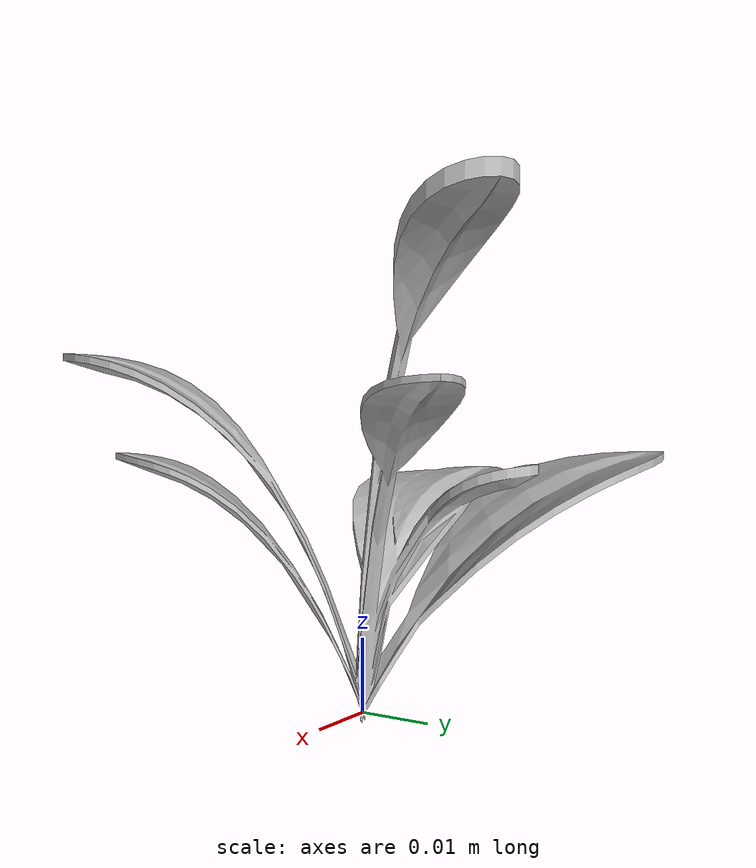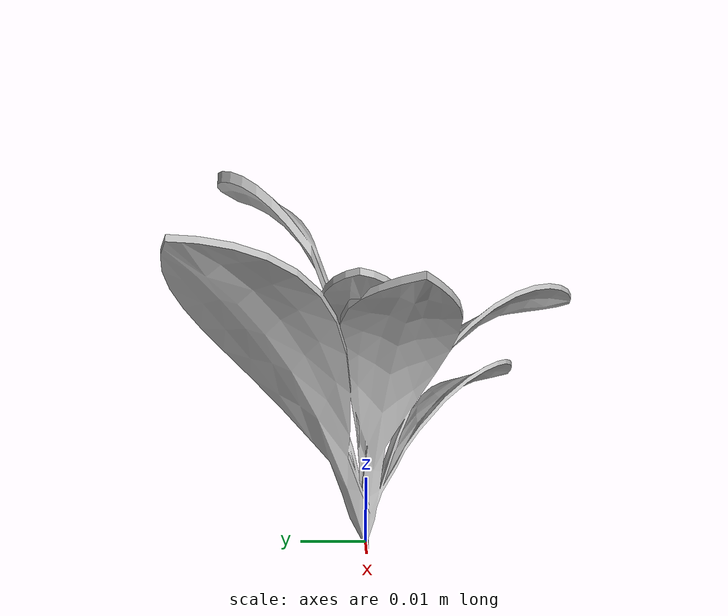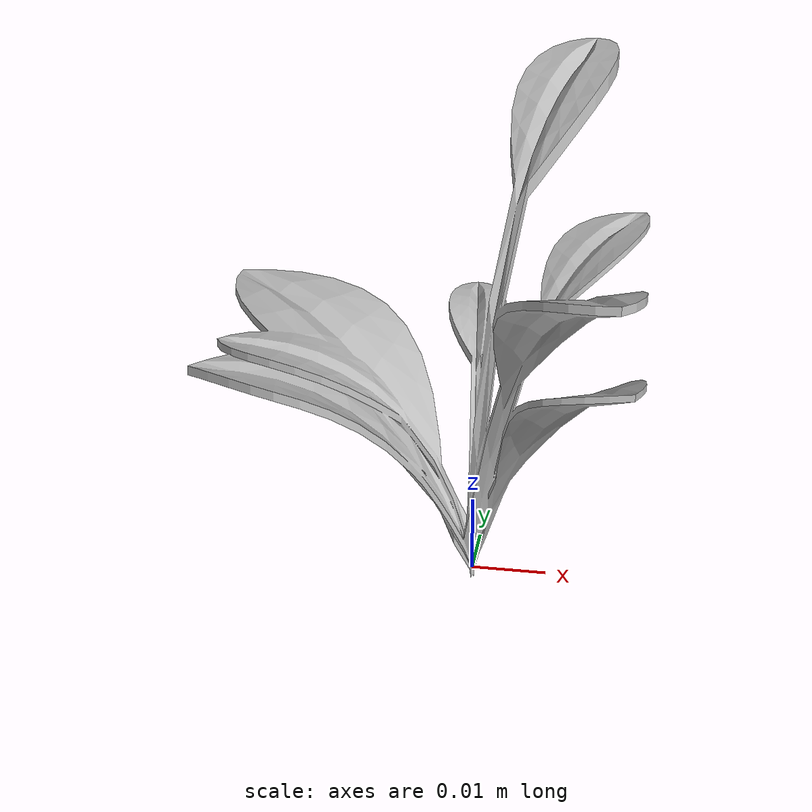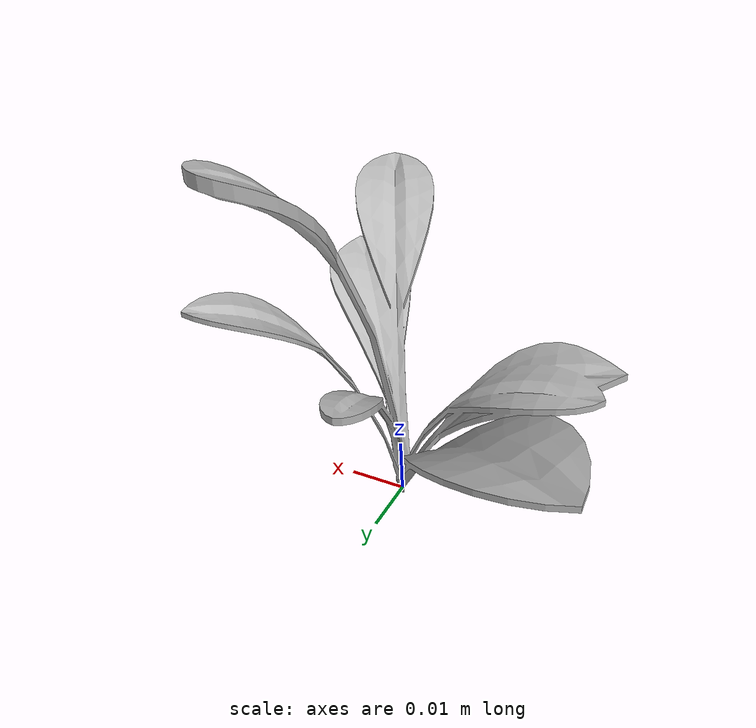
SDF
<sdf version="1.6">
  <model name="sugar_beet_33">
    <static>true</static>
    <link name="body">
      <visual name="visual">
        <geometry>
          <mesh>
            <uri>file:///sugar_beet_33/media/sugar_beet.dae</uri>
          </mesh>
        </geometry>
      </visual>
    </link>
  </model>
</sdf>
